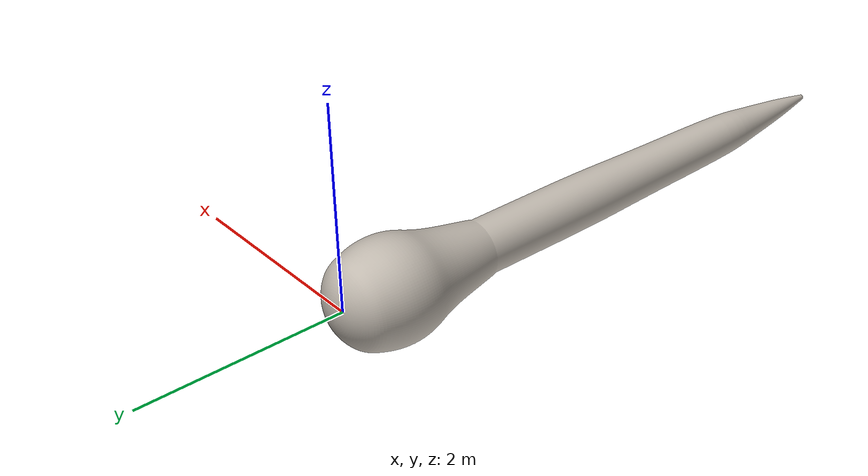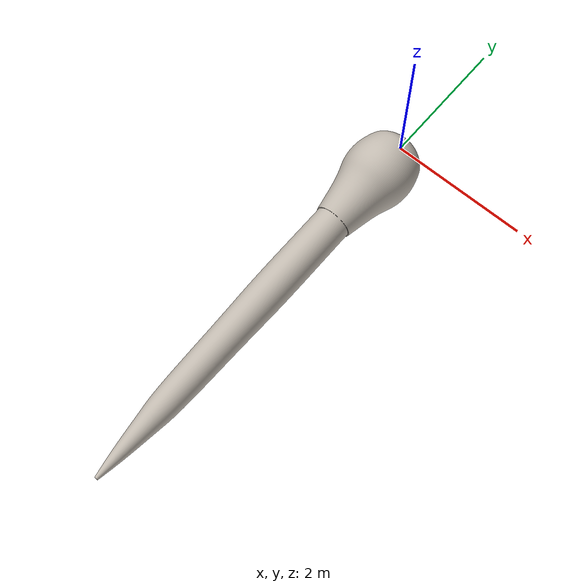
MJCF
<mujoco model="7e17299c2cdd42ea9686e48a1089790c">
  <default>
    <default class="visual">
      <geom group="2" type="mesh" contype="0" conaffinity="0"/>
    </default>
    <default class="collision">
      <geom group="3" type="mesh"/>
    </default>
  </default>
  <asset>
    <texture type="2d" name="material_0" file="material_0.png"/>
    <material name="material_0" texture="material_0" specular="0.4000000000000001" shininess="0.001"/>
    <mesh file="7e17299c2cdd42ea9686e48a1089790c.obj"/>
    <mesh file="7e17299c2cdd42ea9686e48a1089790c_collision_0.obj"/>
    <mesh file="7e17299c2cdd42ea9686e48a1089790c_collision_1.obj"/>
  </asset>
  <worldbody>
    <body name="7e17299c2cdd42ea9686e48a1089790c">
      <freejoint/>
      <geom material="material_0" mesh="7e17299c2cdd42ea9686e48a1089790c" class="visual"/>
      <geom mesh="7e17299c2cdd42ea9686e48a1089790c_collision_0" rgba="0.9367857175087339 0.26617300421852463 0.8412721338987531 1" class="collision"/>
      <geom mesh="7e17299c2cdd42ea9686e48a1089790c_collision_1" rgba="0.36423834731823856 0.35342825694461644 0.2531979046366062 1" class="collision"/>
    </body>
  </worldbody>
</mujoco>
